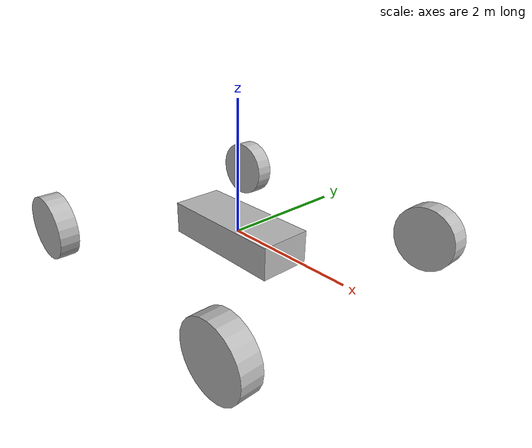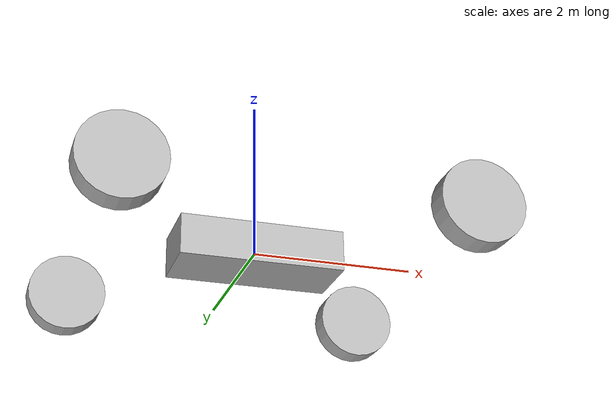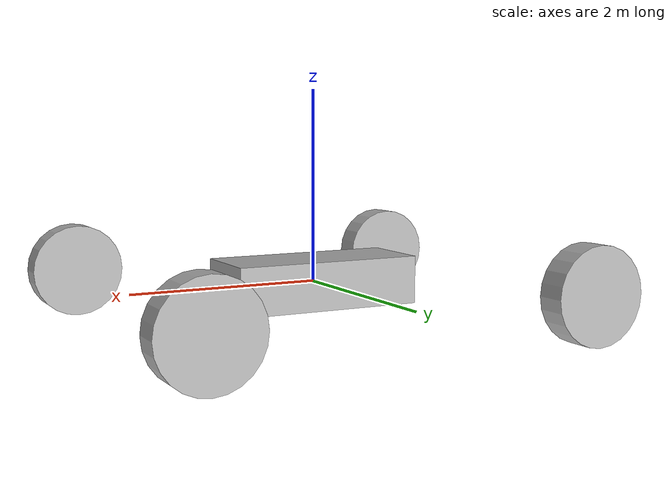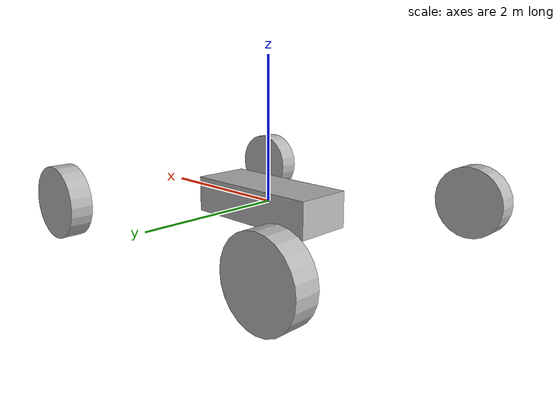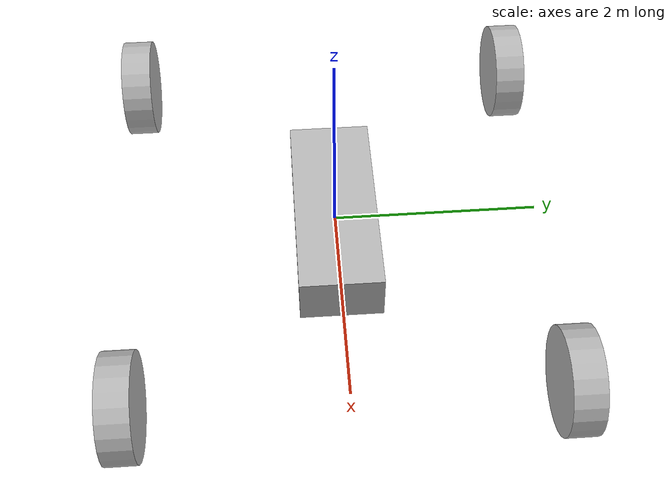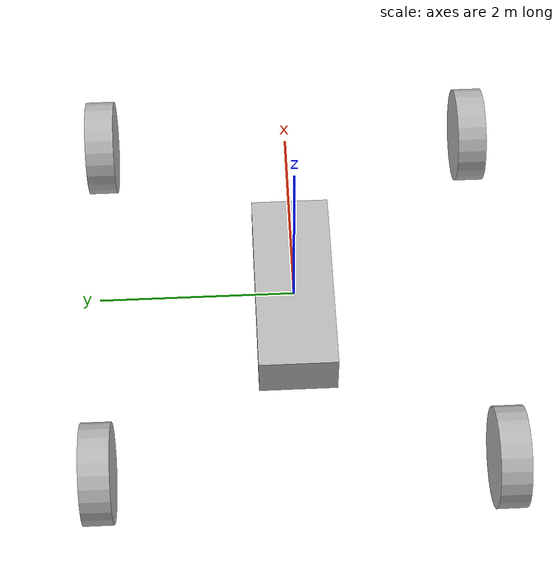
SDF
<sdf version='1.7'>
  <model name='simple_car'>
    <link name='base_link'>
      <inertial>
        <pose>0 0 0 0 -0 0</pose>
        <mass>50</mass>
        <inertia>
          <ixx>3.70833</ixx>
          <ixy>0</ixy>
          <ixz>0</ixz>
          <iyy>17.7083</iyy>
          <iyz>0</iyz>
          <izz>19.3333</izz>
        </inertia>
      </inertial>
      <collision name='base_link_collision'>
        <pose>0 0 0 0 -0 0</pose>
        <geometry>
          <box>
            <size>2 0.8 0.5</size>
          </box>
        </geometry>
      </collision>
      <visual name='base_link_visual'>
        <pose>0 0 0 0 -0 0</pose>
        <geometry>
          <box>
            <size>2 0.8 0.5</size>
          </box>
        </geometry>
      </visual>
    </link>
    <joint name='joint_base_link_to_wheel_link_fl' type='revolute'>
      <pose relative_to='base_link'>2 2 0 1.5708 -0 0</pose>
      <parent>base_link</parent>
      <child>wheel_link_fl</child>
      <axis>
        <xyz>0 0 1</xyz>
        <limit>
          <lower>-1e+16</lower>
          <upper>1e+16</upper>
        </limit>
        <dynamics>
          <spring_reference>0</spring_reference>
          <spring_stiffness>0</spring_stiffness>
        </dynamics>
      </axis>
    </joint>
    <link name='wheel_link_fl'>
      <pose relative_to='joint_base_link_to_wheel_link_fl'>0 0 0 0 -0 0</pose>
      <inertial>
        <pose>0 0 0 0 -0 0</pose>
        <mass>50</mass>
        <inertia>
          <ixx>3.5</ixx>
          <ixy>0</ixy>
          <ixz>0</ixz>
          <iyy>3.5</iyy>
          <iyz>0</iyz>
          <izz>6.25</izz>
        </inertia>
      </inertial>
      <collision name='wheel_link_fl_collision'>
        <pose>0 0 0 0 -0 0</pose>
        <geometry>
          <cylinder>
            <length>0.3</length>
            <radius>0.5</radius>
          </cylinder>
        </geometry>
      </collision>
      <visual name='wheel_link_fl_visual'>
        <pose>0 0 0 0 -0 0</pose>
        <geometry>
          <cylinder>
            <length>0.3</length>
            <radius>0.5</radius>
          </cylinder>
        </geometry>
      </visual>
    </link>
    <joint name='joint_base_link_to_wheel_link_fr' type='revolute'>
      <pose relative_to='base_link'>2 -2 0 1.5708 -0 0</pose>
      <parent>base_link</parent>
      <child>wheel_link_fr</child>
      <axis>
        <xyz>0 0 1</xyz>
        <limit>
          <lower>-1e+16</lower>
          <upper>1e+16</upper>
        </limit>
        <dynamics>
          <spring_reference>0</spring_reference>
          <spring_stiffness>0</spring_stiffness>
        </dynamics>
      </axis>
    </joint>
    <link name='wheel_link_fr'>
      <pose relative_to='joint_base_link_to_wheel_link_fr'>0 0 0 0 -0 0</pose>
      <inertial>
        <pose>0 0 0 0 -0 0</pose>
        <mass>50</mass>
        <inertia>
          <ixx>3.5</ixx>
          <ixy>0</ixy>
          <ixz>0</ixz>
          <iyy>3.5</iyy>
          <iyz>0</iyz>
          <izz>6.25</izz>
        </inertia>
      </inertial>
      <collision name='wheel_link_fr_collision'>
        <pose>0 0 0 0 -0 0</pose>
        <geometry>
          <cylinder>
            <length>0.3</length>
            <radius>0.5</radius>
          </cylinder>
        </geometry>
      </collision>
      <visual name='wheel_link_fr_visual'>
        <pose>0 0 0 0 -0 0</pose>
        <geometry>
          <cylinder>
            <length>0.3</length>
            <radius>0.5</radius>
          </cylinder>
        </geometry>
      </visual>
    </link>
    <joint name='joint_base_link_to_wheel_link_rl' type='revolute'>
      <pose relative_to='base_link'>-2 2 0 1.5708 -0 0</pose>
      <parent>base_link</parent>
      <child>wheel_link_rl</child>
      <axis>
        <xyz>0 0 1</xyz>
        <limit>
          <lower>-1e+16</lower>
          <upper>1e+16</upper>
        </limit>
        <dynamics>
          <spring_reference>0</spring_reference>
          <spring_stiffness>0</spring_stiffness>
        </dynamics>
      </axis>
    </joint>
    <link name='wheel_link_rl'>
      <pose relative_to='joint_base_link_to_wheel_link_rl'>0 0 0 0 -0 0</pose>
      <inertial>
        <pose>0 0 0 0 -0 0</pose>
        <mass>50</mass>
        <inertia>
          <ixx>3.5</ixx>
          <ixy>0</ixy>
          <ixz>0</ixz>
          <iyy>3.5</iyy>
          <iyz>0</iyz>
          <izz>6.25</izz>
        </inertia>
      </inertial>
      <collision name='wheel_link_rl_collision'>
        <pose>0 0 0 0 -0 0</pose>
        <geometry>
          <cylinder>
            <length>0.3</length>
            <radius>0.5</radius>
          </cylinder>
        </geometry>
      </collision>
      <visual name='wheel_link_rl_visual'>
        <pose>0 0 0 0 -0 0</pose>
        <geometry>
          <cylinder>
            <length>0.3</length>
            <radius>0.5</radius>
          </cylinder>
        </geometry>
      </visual>
    </link>
    <joint name='joint_base_link_to_wheel_link_rr' type='revolute'>
      <pose relative_to='base_link'>-2 -2 0 1.5708 -0 0</pose>
      <parent>base_link</parent>
      <child>wheel_link_rr</child>
      <axis>
        <xyz>0 0 1</xyz>
        <limit>
          <lower>-1e+16</lower>
          <upper>1e+16</upper>
        </limit>
        <dynamics>
          <spring_reference>0</spring_reference>
          <spring_stiffness>0</spring_stiffness>
        </dynamics>
      </axis>
    </joint>
    <link name='wheel_link_rr'>
      <pose relative_to='joint_base_link_to_wheel_link_rr'>0 0 0 0 -0 0</pose>
      <inertial>
        <pose>0 0 0 0 -0 0</pose>
        <mass>50</mass>
        <inertia>
          <ixx>3.5</ixx>
          <ixy>0</ixy>
          <ixz>0</ixz>
          <iyy>3.5</iyy>
          <iyz>0</iyz>
          <izz>6.25</izz>
        </inertia>
      </inertial>
      <collision name='wheel_link_rr_collision'>
        <pose>0 0 0 0 -0 0</pose>
        <geometry>
          <cylinder>
            <length>0.3</length>
            <radius>0.5</radius>
          </cylinder>
        </geometry>
      </collision>
      <visual name='wheel_link_rr_visual'>
        <pose>0 0 0 0 -0 0</pose>
        <geometry>
          <cylinder>
            <length>0.3</length>
            <radius>0.5</radius>
          </cylinder>
        </geometry>
      </visual>
    </link>
  </model>
</sdf>
